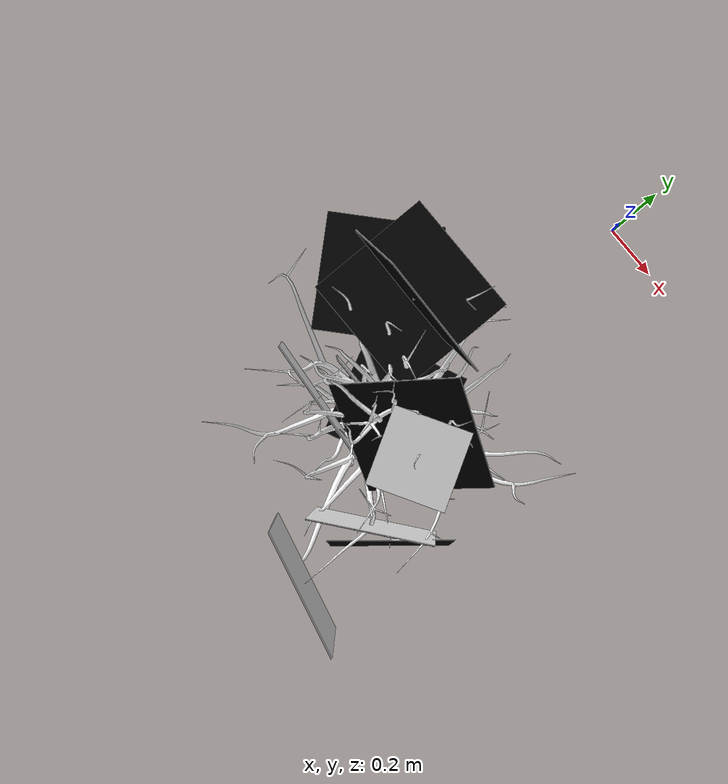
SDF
<?xml version="1.0"?>
<sdf version="1.7">
    <world name="apple_tree_2_marked">

        <plugin filename="gz-sim-physics-system" name="gz::sim::systems::Physics"/>
        <plugin filename="gz-sim-user-commands-system" name="gz::sim::systems::UserCommands"/>
        <plugin filename="gz-sim-scene-broadcaster-system" name="gz::sim::systems::SceneBroadcaster"/>
        <plugin filename="gz-sim-contact-system" name="gz::sim::systems::Contact"/>
        <plugin filename="gz-sim-sensors-system" name="gz::sim::systems::Sensors">
            <render_engine>ogre2</render_engine>
        </plugin>

        <physics type="ode">
            <max_step_size>0.01</max_step_size>
            <real_time_factor>1</real_time_factor>
            <max_contacts>10</max_contacts>
            <real_time_update_rate>1000</real_time_update_rate>
        </physics>

        <gravity>0 0 -9.8</gravity>

        <scene>
            <ambient>0.5 0.5 0.5 1</ambient>
            <background>0.3 0.7 0.9 1</background>
            <grid>false</grid>
            <sky>
                <clouds>
                    <speed>12</speed>
                </clouds>
            </sky>
            <shadows>true</shadows>
        </scene>

        <light name='sun' type='directional'>
            <pose>0 0 10 0 -0 0</pose>
            <cast_shadows>true</cast_shadows>
            <intensity>1</intensity>
            <direction>-0.5 0.1 -0.9</direction>
            <diffuse>0.8 0.8 0.8 1</diffuse>
            <specular>0.2 0.2 0.2 1</specular>
            <attenuation>
                <range>1000</range>
                <linear>0.01</linear>
                <constant>0.90000000000000002</constant>
                <quadratic>0.001</quadratic>
            </attenuation>
            <spot>
                <inner_angle>0</inner_angle>
                <outer_angle>0</outer_angle>
                <falloff>0</falloff>
            </spot>
        </light>

        <!-- Apple tree with crook canker disease -->
        <include>
            <uri>model://apple_tree_2</uri>
            <name>apple_tree_2</name>
            <pose>0 -1.0 0 0 0 -1.57</pose>
        </include>

        <!-- Marker 0 (Shepherd's Crook) -->
        <include>
            <uri>model://aruco_marker_0</uri>
            <name>aruco_marker_0</name>
            <pose>0.161949 -1.00402 1.61664 -0.525076 1.46049 -0</pose>
        </include>

        <include>
            <uri>model://aruco_marker_1</uri>
            <name>aruco_marker_1</name>
            <pose>-0.142604 -0.76261 1.50875 3.14159 1.10339 3.14159</pose>
        </include>

        <include>
            <uri>model://aruco_marker_2</uri>
            <name>aruco_marker_2</name>
            <pose>-0.312943 -0.772364 0.81773 -1.54595 0.027565 -0.837108</pose>
        </include>

        <include>
            <uri>model://aruco_marker_3</uri>
            <name>aruco_marker_3</name>
            <pose>0.299244 -1.23236 0.942958 -1.87746 1.44645 -0.997911</pose>
        </include>

        <include>
            <uri>model://aruco_marker_4</uri>
            <name>aruco_marker_4</name>
            <pose>0.219314 -1.44266 1.31237 -0.031546 -1.48167 -0.20966</pose>
        </include>

        <include>
            <uri>model://aruco_marker_5</uri>
            <name>aruco_marker_5</name>
            <pose>-0.133897 -1.11634 1.16624 -0.092719 -1.44131 0</pose>
        </include>

        <!-- Marker 1 (Canker) -->
        <include>
            <uri>model://aruco_marker_6</uri>
            <name>aruco_marker_6</name>
            <pose>-0.006851 -0.976957 0.391018 -1.54097 -0.01411 0.441732</pose>
        </include>

        <include>
            <uri>model://aruco_marker_7</uri>
            <name>aruco_marker_7</name>
            <pose>-0.170831 -0.757821 1.32427 -1.59273 0 0</pose>
        </include>

        <include>
            <uri>model://aruco_marker_8</uri>
            <name>aruco_marker_8</name>
            <pose>0.110091 -0.984795 1.40589 -0.901663 -0.384491 0.914137</pose>
        </include>

        <include>
            <uri>model://aruco_marker_9</uri>
            <name>aruco_marker_9</name>
            <pose>0.228297 -1.23003 1.06177 1.51928 1.53615 2.18989</pose>
        </include>

        <include>
            <uri>model://aruco_marker_10</uri>
            <name>aruco_marker_10</name>
            <pose>-0.010114 -1.00737 1.13784 0 -1.45258 0</pose>
        </include>
    </world>
</sdf>

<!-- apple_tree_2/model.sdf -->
<sdf version="1.7">
    <model name="apple_tree_2">
        <static>true</static>
<link name="apple_tree_2_link">

            <visual name="apple_tree_2_visual">
                <geometry>
                <mesh>
                    <uri>model://apple_tree_2/meshes/apple_tree_2.obj</uri>
                </mesh>
                </geometry>

                <material>
                    <ambient>0.6 0.6 0.6 1</ambient>
                    <diffuse>1 1 1 1</diffuse>
                    <specular>0.1 0.1 0.1 1</specular>
                    <emissive>0 0 0 1</emissive>

                    <pbr>
                        <metal>
                        <!-- Base color -->
                        <albedo_map>model://apple_tree_2/materials/tree_basecolor_baked.png</albedo_map>

                        <!-- Normal map -->
                        <normal_map>model://apple_tree_2/materials/tree_normal_baked.png</normal_map>

                        <!-- Roughness map (preferred) -->
                        <roughness_map>model://apple_tree_2/materials/tree_roughness_baked.png</roughness_map>

                        <!-- For bark -->
                        <metalness>0.0</metalness>

                        <!-- Optional: if your roughness map is missing/ignored, fallback constant -->
                        </metal>
                    </pbr>
                </material>

            </visual>

            <collision name="apple_tree_2_collision">
                <geometry>
                    <mesh>
                        <uri>model://apple_tree_2/meshes/apple_tree_2.obj</uri>
                    </mesh>
                </geometry>
                <surface>
                <contact>
                    <collide_without_contact>true</collide_without_contact>
                    <collide_bitmask>0x00</collide_bitmask>
                </contact>
                </surface>
            </collision>

        </link>
    </model>
</sdf>

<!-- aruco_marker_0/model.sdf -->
<sdf version='1.6'>
  <model name='aruco_marker_0'>
    <link name='link_0'>
      <pose frame=''>0 0 0 0 -0 0</pose>
      <inertial>
        <mass>1</mass>
        <inertia>
          <ixx>0</ixx>
          <ixy>0</ixy>
          <ixz>0</ixz>
          <iyy>0</iyy>
          <iyz>0</iyz>
          <izz>0</izz>
        </inertia>
      </inertial>
      <visual name='visual'>
        <pose frame=''>0 0 0 0 -0 0</pose>
        <geometry>
          <mesh>
            <uri>file://isr-testbed/aruco_marker_0/aruco_marker_0.dae</uri>
            <scale>0.1 0.1 0.1</scale>
          </mesh>
        </geometry>
        <material>
          <lighting>1</lighting>
          <script>
            <uri>file://media/materials/scripts/gazebo.material</uri>
            <name>Gazebo/DepthMapVS</name>
          </script>
          <ambient>0.3 0.3 0.3 1</ambient>
          <diffuse>0.7 0.7 0.7 1</diffuse>
          <specular>0.01 0.01 0.01 1</specular>
          <emissive>0 0 0 1</emissive>
        </material>
        <transparency>0</transparency>
        <cast_shadows>1</cast_shadows>
      </visual>
      <collision name='collision'>
        <laser_retro>0</laser_retro>
        <max_contacts>10</max_contacts>
        <pose frame=''>0 0 0 0 -0 0</pose>
        <geometry>
          <mesh>
            <uri>file://isr-testbed/aruco_marker_0/aruco_marker_0.dae</uri>
            <scale>0.1 0.1 0.1</scale>
          </mesh>
        </geometry>
        <surface>
          <friction>
            <ode>
              <mu>1</mu>
              <mu2>1</mu2>
              <fdir1>0 0 0</fdir1>
              <slip1>0</slip1>
              <slip2>0</slip2>
            </ode>
            <torsional>
              <coefficient>1</coefficient>
              <patch_radius>0</patch_radius>
              <surface_radius>0</surface_radius>
              <use_patch_radius>1</use_patch_radius>
              <ode>
                <slip>0</slip>
              </ode>
            </torsional>
          </friction>
          <bounce>
            <restitution_coefficient>0</restitution_coefficient>
            <threshold>1e+06</threshold>
          </bounce>
          <contact>
            <collide_without_contact>0</collide_without_contact>
            <collide_without_contact_bitmask>1</collide_without_contact_bitmask>
            <collide_bitmask>1</collide_bitmask>
            <ode>
              <soft_cfm>0</soft_cfm>
              <soft_erp>0.2</soft_erp>
              <kp>1e+13</kp>
              <kd>1</kd>
              <max_vel>0.01</max_vel>
              <min_depth>0</min_depth>
            </ode>
            <bullet>
              <split_impulse>1</split_impulse>
              <split_impulse_penetration_threshold>-0.01</split_impulse_penetration_threshold>
              <soft_cfm>0</soft_cfm>
              <soft_erp>0.2</soft_erp>
              <kp>1e+13</kp>
              <kd>1</kd>
            </bullet>
          </contact>
        </surface>
      </collision>
    </link>
    <static>1</static>
    <allow_auto_disable>1</allow_auto_disable>
  </model>
</sdf>

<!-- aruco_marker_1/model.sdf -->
<sdf version="1.9">
  <model name="aruco_marker_1">
    <static>true</static>

    <link name="link">
      <visual name="front">
        <pose>0 0 0 0 0 0</pose>
        <geometry>
          <box>
            <size>0.35 0.002 0.35</size>
          </box>
        </geometry>

        <material>
          <ambient>1 1 1 1</ambient>
          <diffuse>1 1 1 1</diffuse>
          <specular>0.1 0.1 0.1 1</specular>
          <emissive>0 0 0 1</emissive>

          <pbr>
            <metal>
              <albedo_map>
                model://aruco/aruco_marker_1/materials/textures/marker_1.png
              </albedo_map>
              <emissive_map>
                model://aruco/aruco_marker_1/materials/textures/marker_1.png
              </emissive_map>
            </metal>
          </pbr>
        </material>
      </visual>

      <visual name="back">
        <pose>0 -0.002 0 0 0 3.1416</pose>
        <geometry>
          <box>
            <size>0.35 0.002 0.35</size>
          </box>
        </geometry>
        <material>
          <ambient>0 0 0 1</ambient>
          <diffuse>0 0 0 1</diffuse>
        </material>
      </visual>

    </link>

  </model>
</sdf>

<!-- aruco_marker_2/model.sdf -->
<sdf version="1.9">
  <model name="aruco_marker_2">
    <static>true</static>

    <link name="link">
      <visual name="front">
        <pose>0 0 0 0 0 0</pose>
        <geometry>
          <box>
            <size>0.35 0.002 0.35</size>
          </box>
        </geometry>

        <material>
          <ambient>1 1 1 1</ambient>
          <diffuse>1 1 1 1</diffuse>
          <specular>0.1 0.1 0.1 1</specular>
          <emissive>0 0 0 1</emissive>

          <pbr>
            <metal>
              <albedo_map>
                model://aruco/aruco_marker_2/materials/textures/marker_2.png
              </albedo_map>
              <emissive_map>
                model://aruco/aruco_marker_2/materials/textures/marker_2.png
              </emissive_map>
            </metal>
          </pbr>
        </material>
      </visual>

      <visual name="back">
        <pose>0 -0.002 0 0 0 3.1416</pose>
        <geometry>
          <box>
            <size>0.35 0.002 0.35</size>
          </box>
        </geometry>
        <material>
          <ambient>0 0 0 1</ambient>
          <diffuse>0 0 0 1</diffuse>
        </material>
      </visual>

    </link>

  </model>
</sdf>

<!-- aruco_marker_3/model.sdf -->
<sdf version="1.9">
  <model name="aruco_marker_3">
    <static>true</static>

    <link name="link">
      <visual name="front">
        <pose>0 0 0 0 0 0</pose>
        <geometry>
          <box>
            <size>0.35 0.002 0.35</size>
          </box>
        </geometry>

        <material>
          <ambient>1 1 1 1</ambient>
          <diffuse>1 1 1 1</diffuse>
          <specular>0.1 0.1 0.1 1</specular>
          <emissive>0 0 0 1</emissive>

          <pbr>
            <metal>
              <albedo_map>
                model://aruco/aruco_marker_3/materials/textures/marker_3.png
              </albedo_map>
              <emissive_map>
                model://aruco/aruco_marker_3/materials/textures/marker_3.png
              </emissive_map>
            </metal>
          </pbr>
        </material>
      </visual>

      <visual name="back">
        <pose>0 -0.002 0 0 0 3.1416</pose>
        <geometry>
          <box>
            <size>0.35 0.002 0.35</size>
          </box>
        </geometry>
        <material>
          <ambient>0 0 0 1</ambient>
          <diffuse>0 0 0 1</diffuse>
        </material>
      </visual>

    </link>

  </model>
</sdf>

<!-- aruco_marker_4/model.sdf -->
<sdf version="1.9">
  <model name="aruco_marker_4">
    <static>true</static>

    <link name="link">
      <visual name="front">
        <pose>0 0 0 0 0 0</pose>
        <geometry>
          <box>
            <size>0.35 0.002 0.35</size>
          </box>
        </geometry>

        <material>
          <ambient>1 1 1 1</ambient>
          <diffuse>1 1 1 1</diffuse>
          <specular>0.1 0.1 0.1 1</specular>
          <emissive>0 0 0 1</emissive>

          <pbr>
            <metal>
              <albedo_map>
                model://aruco/aruco_marker_4/materials/textures/marker_4.png
              </albedo_map>
              <emissive_map>
                model://aruco/aruco_marker_4/materials/textures/marker_4.png
              </emissive_map>
            </metal>
          </pbr>
        </material>
      </visual>

      <visual name="back">
        <pose>0 -0.002 0 0 0 3.1416</pose>
        <geometry>
          <box>
            <size>0.35 0.002 0.35</size>
          </box>
        </geometry>
        <material>
          <ambient>0 0 0 1</ambient>
          <diffuse>0 0 0 1</diffuse>
        </material>
      </visual>

    </link>

  </model>
</sdf>

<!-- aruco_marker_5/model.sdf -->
<sdf version="1.9">
  <model name="aruco_marker_5">
    <static>true</static>

    <link name="link">
      <visual name="front">
        <pose>0 0 0 0 0 0</pose>
        <geometry>
          <box>
            <size>0.35 0.002 0.35</size>
          </box>
        </geometry>

        <material>
          <ambient>1 1 1 1</ambient>
          <diffuse>1 1 1 1</diffuse>
          <specular>0.1 0.1 0.1 1</specular>
          <emissive>0 0 0 1</emissive>

          <pbr>
            <metal>
              <albedo_map>
                model://aruco/aruco_marker_5/materials/textures/marker_5.png
              </albedo_map>
              <emissive_map>
                model://aruco/aruco_marker_5/materials/textures/marker_5.png
              </emissive_map>
            </metal>
          </pbr>
        </material>
      </visual>

      <visual name="back">
        <pose>0 -0.002 0 0 0 3.1416</pose>
        <geometry>
          <box>
            <size>0.35 0.002 0.35</size>
          </box>
        </geometry>
        <material>
          <ambient>0 0 0 1</ambient>
          <diffuse>0 0 0 1</diffuse>
        </material>
      </visual>

    </link>

  </model>
</sdf>

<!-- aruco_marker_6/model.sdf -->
<sdf version="1.9">
  <model name="aruco_marker_6">
    <static>true</static>

    <link name="link">
      <visual name="front">
        <pose>0 0 0 0 0 0</pose>
        <geometry>
          <box>
            <size>0.35 0.002 0.35</size>
          </box>
        </geometry>

        <material>
          <ambient>1 1 1 1</ambient>
          <diffuse>1 1 1 1</diffuse>
          <specular>0.1 0.1 0.1 1</specular>
          <emissive>0 0 0 1</emissive>

          <pbr>
            <metal>
              <albedo_map>
                model://aruco/aruco_marker_6/materials/textures/marker_6.png
              </albedo_map>
              <emissive_map>
                model://aruco/aruco_marker_6/materials/textures/marker_6.png
              </emissive_map>
            </metal>
          </pbr>
        </material>
      </visual>

      <visual name="back">
        <pose>0 -0.002 0 0 0 3.1416</pose>
        <geometry>
          <box>
            <size>0.35 0.002 0.35</size>
          </box>
        </geometry>
        <material>
          <ambient>0 0 0 1</ambient>
          <diffuse>0 0 0 1</diffuse>
        </material>
      </visual>

    </link>

  </model>
</sdf>

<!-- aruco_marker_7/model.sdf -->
<sdf version="1.9">
  <model name="aruco_marker_7">
    <static>true</static>

    <link name="link">
      <visual name="front">
        <pose>0 0 0 0 0 0</pose>
        <geometry>
          <box>
            <size>0.35 0.002 0.35</size>
          </box>
        </geometry>

        <material>
          <ambient>1 1 1 1</ambient>
          <diffuse>1 1 1 1</diffuse>
          <specular>0.1 0.1 0.1 1</specular>
          <emissive>0 0 0 1</emissive>

          <pbr>
            <metal>
              <albedo_map>
                model://aruco/aruco_marker_7/materials/textures/marker_7.png
              </albedo_map>
              <emissive_map>
                model://aruco/aruco_marker_7/materials/textures/marker_7.png
              </emissive_map>
            </metal>
          </pbr>
        </material>
      </visual>

      <visual name="back">
        <pose>0 -0.002 0 0 0 3.1416</pose>
        <geometry>
          <box>
            <size>0.35 0.002 0.35</size>
          </box>
        </geometry>
        <material>
          <ambient>0 0 0 1</ambient>
          <diffuse>0 0 0 1</diffuse>
        </material>
      </visual>

    </link>

  </model>
</sdf>

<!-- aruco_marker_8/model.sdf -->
<sdf version="1.9">
  <model name="aruco_marker_8">
    <static>true</static>

    <link name="link">
      <visual name="front">
        <pose>0 0 0 0 0 0</pose>
        <geometry>
          <box>
            <size>0.35 0.002 0.35</size>
          </box>
        </geometry>

        <material>
          <ambient>1 1 1 1</ambient>
          <diffuse>1 1 1 1</diffuse>
          <specular>0.1 0.1 0.1 1</specular>
          <emissive>0 0 0 1</emissive>

          <pbr>
            <metal>
              <albedo_map>
                model://aruco/aruco_marker_8/materials/textures/marker_8.png
              </albedo_map>
              <emissive_map>
                model://aruco/aruco_marker_8/materials/textures/marker_8.png
              </emissive_map>
            </metal>
          </pbr>
        </material>
      </visual>

      <visual name="back">
        <pose>0 -0.002 0 0 0 3.1416</pose>
        <geometry>
          <box>
            <size>0.35 0.002 0.35</size>
          </box>
        </geometry>
        <material>
          <ambient>0 0 0 1</ambient>
          <diffuse>0 0 0 1</diffuse>
        </material>
      </visual>

    </link>

  </model>
</sdf>

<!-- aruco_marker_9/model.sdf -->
<sdf version="1.9">
  <model name="aruco_marker_9">
    <static>true</static>

    <link name="link">
      <visual name="front">
        <pose>0 0 0 0 0 0</pose>
        <geometry>
          <box>
            <size>0.35 0.002 0.35</size>
          </box>
        </geometry>

        <material>
          <ambient>1 1 1 1</ambient>
          <diffuse>1 1 1 1</diffuse>
          <specular>0.1 0.1 0.1 1</specular>
          <emissive>0 0 0 1</emissive>

          <pbr>
            <metal>
              <albedo_map>
                model://aruco/aruco_marker_9/materials/textures/marker_9.png
              </albedo_map>
              <emissive_map>
                model://aruco/aruco_marker_9/materials/textures/marker_9.png
              </emissive_map>
            </metal>
          </pbr>
        </material>
      </visual>

      <visual name="back">
        <pose>0 -0.002 0 0 0 3.1416</pose>
        <geometry>
          <box>
            <size>0.35 0.002 0.35</size>
          </box>
        </geometry>
        <material>
          <ambient>0 0 0 1</ambient>
          <diffuse>0 0 0 1</diffuse>
        </material>
      </visual>

    </link>

  </model>
</sdf>

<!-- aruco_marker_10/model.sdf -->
<sdf version="1.9">
  <model name="aruco_marker_10">
    <static>true</static>

    <link name="link">
      <visual name="front">
        <pose>0 0 0 0 0 0</pose>
        <geometry>
          <box>
            <size>0.35 0.002 0.35</size>
          </box>
        </geometry>

        <material>
          <ambient>1 1 1 1</ambient>
          <diffuse>1 1 1 1</diffuse>
          <specular>0.1 0.1 0.1 1</specular>
          <emissive>0 0 0 1</emissive>

          <pbr>
            <metal>
              <albedo_map>
                model://aruco/aruco_marker_10/materials/textures/marker_10.png
              </albedo_map>
              <emissive_map>
                model://aruco/aruco_marker_10/materials/textures/marker_10.png
              </emissive_map>
            </metal>
          </pbr>
        </material>
      </visual>

      <visual name="back">
        <pose>0 -0.002 0 0 0 3.1416</pose>
        <geometry>
          <box>
            <size>0.35 0.002 0.35</size>
          </box>
        </geometry>
        <material>
          <ambient>0 0 0 1</ambient>
          <diffuse>0 0 0 1</diffuse>
        </material>
      </visual>

    </link>

  </model>
</sdf>
